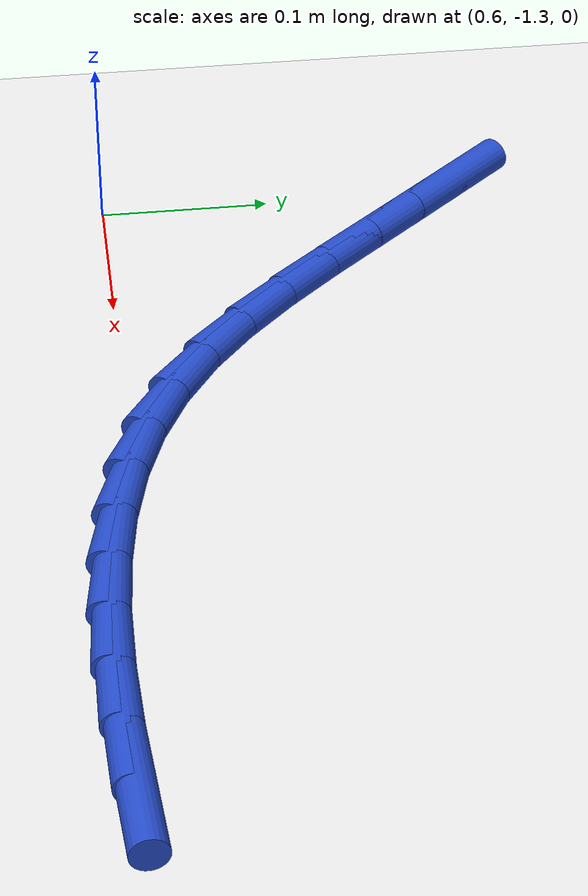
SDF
<sdf version="1.6">
 <world name="default">
  <model name="ground_plane">
   <static>1</static>
   <link name="link">
    <collision name="collision">
     <geometry><plane><normal>0 0 1</normal><size>100 100</size></plane></geometry>
     <surface><friction><ode><mu>100</mu><mu2>50</mu2></ode></friction></surface>
    </collision>
    <visual name="visual">
     <cast_shadows>0</cast_shadows>
     <geometry><plane><normal>0 0 1</normal><size>100 100</size></plane></geometry>
     <material>
      <script><uri>file://media/materials/scripts/gazebo.material</uri><name>Gazebo/WhiteGlow</name></script>
     </material>
    </visual>
   </link>
  </model>
  <model name="line">
   <link name="link_142">
    <pose>1.093949612984093 -1.3137872546577696 0.01 0 1.57 0.07086328885634707</pose>
    <collision name="collision">
     <geometry><cylinder><radius>0.01</radius><length>0.08</length></cylinder></geometry>
    </collision>
    <visual name="visual">
     <material>
      <script><name>Gazebo/Blue</name><uri>file://media/materials/scripts/gazebo.material</uri></script>
     </material>
     <geometry><cylinder><radius>0.01</radius><length>0.08</length></cylinder></geometry>
    </visual>
   </link>
   <link name="link_143">
    <pose>1.052543640300427 -1.3167263393496729 0.01 0 1.57 0.034822661796999235</pose>
    <collision name="collision">
     <geometry><cylinder><radius>0.01</radius><length>0.08</length></cylinder></geometry>
    </collision>
    <visual name="visual">
     <material>
      <script><name>Gazebo/Blue</name><uri>file://media/materials/scripts/gazebo.material</uri></script>
     </material>
     <geometry><cylinder><radius>0.01</radius><length>0.08</length></cylinder></geometry>
    </visual>
   </link>
   <link name="link_144">
    <pose>1.0121245917655732 -1.3181344074024242 0.01 0 1.57 -0.01287296313170643</pose>
    <collision name="collision">
     <geometry><cylinder><radius>0.01</radius><length>0.08</length></cylinder></geometry>
    </collision>
    <visual name="visual">
     <material>
      <script><name>Gazebo/Blue</name><uri>file://media/materials/scripts/gazebo.material</uri></script>
     </material>
     <geometry><cylinder><radius>0.01</radius><length>0.08</length></cylinder></geometry>
    </visual>
   </link>
   <link name="link_145">
    <pose>0.9727964899474144 -1.3176281102306653 0.01 0 1.57 -0.07340004315678857</pose>
    <collision name="collision">
     <geometry><cylinder><radius>0.01</radius><length>0.08</length></cylinder></geometry>
    </collision>
    <visual name="visual">
     <material>
      <script><name>Gazebo/Blue</name><uri>file://media/materials/scripts/gazebo.material</uri></script>
     </material>
     <geometry><cylinder><radius>0.01</radius><length>0.08</length></cylinder></geometry>
    </visual>
   </link>
   <link name="link_146">
    <pose>0.9346633574138302 -1.3148240992490372 0.01 0 1.57 -0.14782645835730007</pose>
    <collision name="collision">
     <geometry><cylinder><radius>0.01</radius><length>0.08</length></cylinder></geometry>
    </collision>
    <visual name="visual">
     <material>
      <script><name>Gazebo/Blue</name><uri>file://media/materials/scripts/gazebo.material</uri></script>
     </material>
     <geometry><cylinder><radius>0.01</radius><length>0.08</length></cylinder></geometry>
    </visual>
   </link>
   <link name="link_147">
    <pose>0.8978292167327037 -1.3093390258721822 0.01 0 1.57 -0.2367725779958923</pose>
    <collision name="collision">
     <geometry><cylinder><radius>0.01</radius><length>0.08</length></cylinder></geometry>
    </collision>
    <visual name="visual">
     <material>
      <script><name>Gazebo/Blue</name><uri>file://media/materials/scripts/gazebo.material</uri></script>
     </material>
     <geometry><cylinder><radius>0.01</radius><length>0.08</length></cylinder></geometry>
    </visual>
   </link>
   <link name="link_148">
    <pose>0.8623980904719171 -1.3007895415147421 0.01 0 1.57 -0.33992251337380136</pose>
    <collision name="collision">
     <geometry><cylinder><radius>0.01</radius><length>0.08</length></cylinder></geometry>
    </collision>
    <visual name="visual">
     <material>
      <script><name>Gazebo/Blue</name><uri>file://media/materials/scripts/gazebo.material</uri></script>
     </material>
     <geometry><cylinder><radius>0.01</radius><length>0.08</length></cylinder></geometry>
    </visual>
   </link>
   <link name="link_149">
    <pose>0.828474001199352 -1.2887922975913582 0.01 0 1.57 -0.4554900574608679</pose>
    <collision name="collision">
     <geometry><cylinder><radius>0.01</radius><length>0.08</length></cylinder></geometry>
    </collision>
    <visual name="visual">
     <material>
      <script><name>Gazebo/Blue</name><uri>file://media/materials/scripts/gazebo.material</uri></script>
     </material>
     <geometry><cylinder><radius>0.01</radius><length>0.08</length></cylinder></geometry>
    </visual>
   </link>
   <link name="link_150">
    <pose>0.7961609714828906 -1.2729639455166724 0.01 0 1.57 -0.5789242196260177</pose>
    <collision name="collision">
     <geometry><cylinder><radius>0.01</radius><length>0.08</length></cylinder></geometry>
    </collision>
    <visual name="visual">
     <material>
      <script><name>Gazebo/Blue</name><uri>file://media/materials/scripts/gazebo.material</uri></script>
     </material>
     <geometry><cylinder><radius>0.01</radius><length>0.08</length></cylinder></geometry>
    </visual>
   </link>
   <link name="link_151">
    <pose>0.7655509560768434 -1.2529562606421005 0.01 0 1.57 -0.6875743936859163</pose>
    <collision name="collision">
     <geometry><cylinder><radius>0.01</radius><length>0.08</length></cylinder></geometry>
    </collision>
    <visual name="visual">
     <material>
      <script><name>Gazebo/Blue</name><uri>file://media/materials/scripts/gazebo.material</uri></script>
     </material>
     <geometry><cylinder><radius>0.01</radius><length>0.08</length></cylinder></geometry>
    </visual>
   </link>
   <link name="link_152">
    <pose>0.7365026681667739 -1.2290998788322578 0.01 0 1.57 -0.7656477225812082</pose>
    <collision name="collision">
     <geometry><cylinder><radius>0.01</radius><length>0.08</length></cylinder></geometry>
    </collision>
    <visual name="visual">
     <material>
      <script><name>Gazebo/Blue</name><uri>file://media/materials/scripts/gazebo.material</uri></script>
     </material>
     <geometry><cylinder><radius>0.01</radius><length>0.08</length></cylinder></geometry>
    </visual>
   </link>
   <link name="link_153">
    <pose>0.708663829023977 -1.2023395378031907 0.01 0 1.57 -0.8160629831353452</pose>
    <collision name="collision">
     <geometry><cylinder><radius>0.01</radius><length>0.08</length></cylinder></geometry>
    </collision>
    <visual name="visual">
     <material>
      <script><name>Gazebo/Blue</name><uri>file://media/materials/scripts/gazebo.material</uri></script>
     </material>
     <geometry><cylinder><radius>0.01</radius><length>0.08</length></cylinder></geometry>
    </visual>
   </link>
   <link name="link_154">
    <pose>0.6816745560625999 -1.173642106653418 0.01 0 1.57 -0.8417425639604343</pose>
    <collision name="collision">
     <geometry><cylinder><radius>0.01</radius><length>0.08</length></cylinder></geometry>
    </collision>
    <visual name="visual">
     <material>
      <script><name>Gazebo/Blue</name><uri>file://media/materials/scripts/gazebo.material</uri></script>
     </material>
     <geometry><cylinder><radius>0.01</radius><length>0.08</length></cylinder></geometry>
    </visual>
   </link>
   <link name="link_155">
    <pose>0.6551749666967902 -1.1439744544814587 0.01 0 1.57 -0.8456821034172508</pose>
    <collision name="collision">
     <geometry><cylinder><radius>0.01</radius><length>0.08</length></cylinder></geometry>
    </collision>
    <visual name="visual">
     <material>
      <script><name>Gazebo/Blue</name><uri>file://media/materials/scripts/gazebo.material</uri></script>
     </material>
     <geometry><cylinder><radius>0.01</radius><length>0.08</length></cylinder></geometry>
    </visual>
   </link>
   <link name="link_156">
    <pose>0.6288282838899069 -1.11424306324559 0.01 0 1.57 -0.8424878917808003</pose>
    <collision name="collision">
     <geometry><cylinder><radius>0.01</radius><length>0.08</length></cylinder></geometry>
    </collision>
    <visual name="visual">
     <material>
      <script><name>Gazebo/Blue</name><uri>file://media/materials/scripts/gazebo.material</uri></script>
     </material>
     <geometry><cylinder><radius>0.01</radius><length>0.08</length></cylinder></geometry>
    </visual>
   </link>
   <link name="link_157">
    <pose>0.602527534884121 -1.0847538135903074 0.01 0 1.57 -0.8403786340295477</pose>
    <collision name="collision">
     <geometry><cylinder><radius>0.01</radius><length>0.08</length></cylinder></geometry>
    </collision>
    <visual name="visual">
     <material>
      <script><name>Gazebo/Blue</name><uri>file://media/materials/scripts/gazebo.material</uri></script>
     </material>
     <geometry><cylinder><radius>0.01</radius><length>0.08</length></cylinder></geometry>
    </visual>
   </link>
  </model>
 </world>
</sdf>
